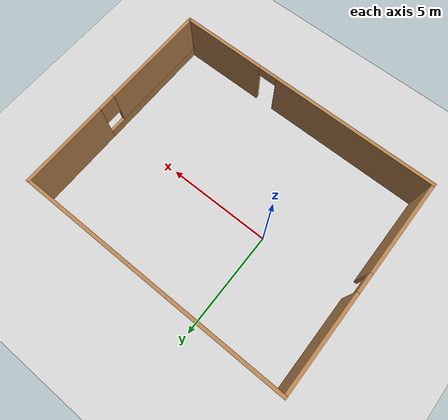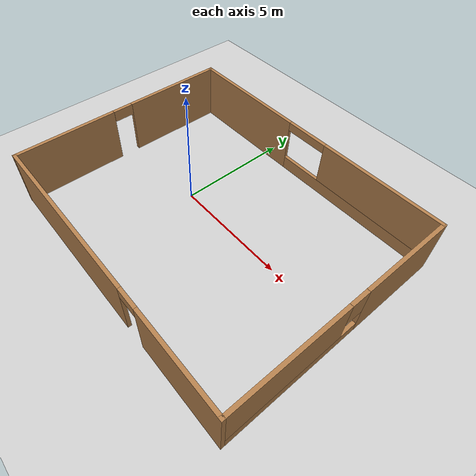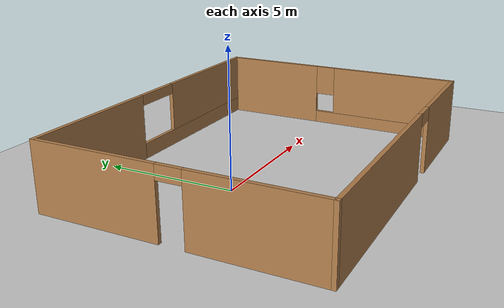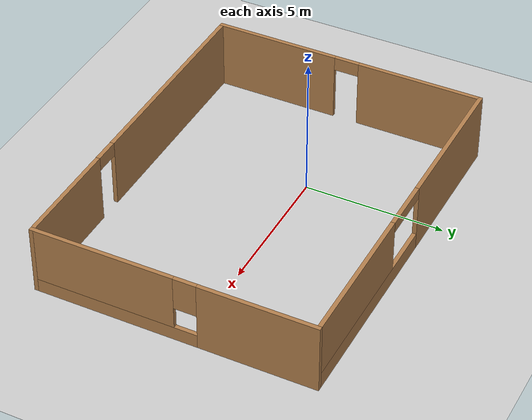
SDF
<sdf version="1.7">
 <world name="default">
  <light name="sun" type="directional">
   <pose>0 0 10 0 -0 0</pose>
   <diffuse>0.8 0.8 0.8 1</diffuse>
   <specular>0.2 0.2 0.2 1</specular>
   <attenuation>
    <range>1000</range>
    <constant>0.9</constant>
    <linear>0.01</linear>
    <quadratic>0.001</quadratic>
   </attenuation>
   <direction>-0.5 0.1 -0.9</direction>
   <spot><inner_angle>0</inner_angle><outer_angle>0</outer_angle><falloff>0</falloff></spot>
  </light>
  <model name="ground_plane">
   <static>1</static>
   <link name="link">
    <collision name="collision">
     <geometry><plane><normal>0 0 1</normal><size>100 100</size></plane></geometry>
     <surface>
      <contact><collide_bitmask>65535</collide_bitmask></contact>
      <friction><ode><mu>100</mu><mu2>50</mu2></ode></friction>
     </surface>
    </collision>
    <visual name="visual">
     <cast_shadows>0</cast_shadows>
     <geometry><plane><normal>0 0 1</normal><size>100 100</size></plane></geometry>
     <material>
      <script><uri>file://media/materials/scripts/gazebo.material</uri><name>Gazebo/Grey</name></script>
     </material>
    </visual>
   </link>
  </model>
  <gravity>0 0 -9.8</gravity>
  <magnetic_field>6e-06 2.3e-05 -4.2e-05</magnetic_field>
  <atmosphere type="adiabatic"/>
  <physics type="ode">
   <max_step_size>0.001</max_step_size>
   <real_time_factor>1</real_time_factor>
   <real_time_update_rate>1000</real_time_update_rate>
  </physics>
  <scene><ambient>0.4 0.4 0.4 1</ambient><background>0.7 0.7 0.7 1</background><shadows>1</shadows></scene>
  <audio><device>default</device></audio>
  <spherical_coordinates>
   <surface_model>EARTH_WGS84</surface_model>
   <latitude_deg>0</latitude_deg>
   <longitude_deg>0</longitude_deg>
   <elevation>0</elevation>
   <heading_deg>0</heading_deg>
  </spherical_coordinates>
  <model name="my_world">
   <pose>2.1445 -0.454262 0 0 -0 0</pose>
   <link name="Wall_0">
    <pose>-6.3 0 0 0 -0 1.5708</pose>
    <visual name="Wall_0_Visual_0">
     <pose>-2.7338 0 1.25 0 -0 0</pose>
     <geometry><box><size>4.53239 0.15 2.5</size></box></geometry>
     <material>
      <script><uri>file://media/materials/scripts/gazebo.material</uri><name>Gazebo/Wood</name></script>
      <ambient>1 1 1 1</ambient>
     </material>
     <meta><layer>0</layer></meta>
    </visual>
    <collision name="Wall_0_Collision_0">
     <geometry><box><size>4.53239 0.15 2.5</size></box></geometry>
     <pose>-2.7338 0 1.25 0 -0 0</pose>
    </collision>
    <visual name="Wall_0_Visual_1">
     <pose>2.71619 0 1.25 0 -0 0</pose>
     <geometry><box><size>4.56761 0.15 2.5</size></box></geometry>
     <material>
      <script><uri>file://media/materials/scripts/gazebo.material</uri><name>Gazebo/Wood</name></script>
      <ambient>1 1 1 1</ambient>
     </material>
     <meta><layer>0</layer></meta>
    </visual>
    <collision name="Wall_0_Collision_1">
     <geometry><box><size>4.56761 0.15 2.5</size></box></geometry>
     <pose>2.71619 0 1.25 0 -0 0</pose>
    </collision>
    <visual name="Wall_0_Visual_2">
     <pose>-0.01761 0 2.25 0 -0 0</pose>
     <geometry><box><size>0.9 0.15 0.5</size></box></geometry>
     <material>
      <script><uri>file://media/materials/scripts/gazebo.material</uri><name>Gazebo/Wood</name></script>
      <ambient>1 1 1 1</ambient>
     </material>
     <meta><layer>0</layer></meta>
    </visual>
    <collision name="Wall_0_Collision_2">
     <geometry><box><size>0.9 0.15 0.5</size></box></geometry>
     <pose>-0.01761 0 2.25 0 -0 0</pose>
    </collision>
   </link>
   <link name="Wall_1">
    <pose>0 4.925 0 0 -0 0</pose>
    <visual name="Wall_1_Visual_0">
     <pose>-3.65009 0 1.25 0 -0 0</pose>
     <geometry><box><size>5.44982 0.15 2.5</size></box></geometry>
     <material>
      <script><uri>file://media/materials/scripts/gazebo.material</uri><name>Gazebo/Wood</name></script>
      <ambient>1 1 1 1</ambient>
     </material>
     <meta><layer>0</layer></meta>
    </visual>
    <collision name="Wall_1_Collision_0">
     <geometry><box><size>5.44982 0.15 2.5</size></box></geometry>
     <pose>-3.65009 0 1.25 0 -0 0</pose>
    </collision>
    <visual name="Wall_1_Visual_1">
     <pose>2.72491 0 0.3 0 -0 0</pose>
     <geometry><box><size>7.30018 0.15 0.6</size></box></geometry>
     <material>
      <script><uri>file://media/materials/scripts/gazebo.material</uri><name>Gazebo/Wood</name></script>
      <ambient>1 1 1 1</ambient>
     </material>
     <meta><layer>0</layer></meta>
    </visual>
    <collision name="Wall_1_Collision_1">
     <geometry><box><size>7.30018 0.15 0.6</size></box></geometry>
     <pose>2.72491 0 0.3 0 -0 0</pose>
    </collision>
    <visual name="Wall_1_Visual_2">
     <pose>3.67241 0 1.55 0 -0 0</pose>
     <geometry><box><size>5.40518 0.15 1.9</size></box></geometry>
     <material>
      <script><uri>file://media/materials/scripts/gazebo.material</uri><name>Gazebo/Wood</name></script>
      <ambient>1 1 1 1</ambient>
     </material>
     <meta><layer>0</layer></meta>
    </visual>
    <collision name="Wall_1_Collision_2">
     <geometry><box><size>5.40518 0.15 1.9</size></box></geometry>
     <pose>3.67241 0 1.55 0 -0 0</pose>
    </collision>
    <visual name="Wall_1_Visual_3">
     <pose>0.022323 0 2.3 0 -0 0</pose>
     <geometry><box><size>1.895 0.15 0.4</size></box></geometry>
     <material>
      <script><uri>file://media/materials/scripts/gazebo.material</uri><name>Gazebo/Wood</name></script>
      <ambient>1 1 1 1</ambient>
     </material>
     <meta><layer>0</layer></meta>
    </visual>
    <collision name="Wall_1_Collision_3">
     <geometry><box><size>1.895 0.15 0.4</size></box></geometry>
     <pose>0.022323 0 2.3 0 -0 0</pose>
    </collision>
   </link>
   <link name="Wall_2">
    <pose>6.3 0 0 0 -0 -1.5708</pose>
    <visual name="Wall_2_Visual_0">
     <pose>-2.93745 0 1.25 0 -0 0</pose>
     <geometry><box><size>4.12511 0.15 2.5</size></box></geometry>
     <material>
      <script><uri>file://media/materials/scripts/gazebo.material</uri><name>Gazebo/Wood</name></script>
      <ambient>1 1 1 1</ambient>
     </material>
     <meta><layer>0</layer></meta>
    </visual>
    <collision name="Wall_2_Collision_0">
     <geometry><box><size>4.12511 0.15 2.5</size></box></geometry>
     <pose>-2.93745 0 1.25 0 -0 0</pose>
    </collision>
    <visual name="Wall_2_Visual_1">
     <pose>2.06255 0 0.25 0 -0 0</pose>
     <geometry><box><size>5.87489 0.15 0.5</size></box></geometry>
     <material>
      <script><uri>file://media/materials/scripts/gazebo.material</uri><name>Gazebo/Wood</name></script>
      <ambient>1 1 1 1</ambient>
     </material>
     <meta><layer>0</layer></meta>
    </visual>
    <collision name="Wall_2_Collision_1">
     <geometry><box><size>5.87489 0.15 0.5</size></box></geometry>
     <pose>2.06255 0 0.25 0 -0 0</pose>
    </collision>
    <visual name="Wall_2_Visual_2">
     <pose>2.46255 0 1.5 0 -0 0</pose>
     <geometry><box><size>5.07489 0.15 2</size></box></geometry>
     <material>
      <script><uri>file://media/materials/scripts/gazebo.material</uri><name>Gazebo/Wood</name></script>
      <ambient>1 1 1 1</ambient>
     </material>
     <meta><layer>0</layer></meta>
    </visual>
    <collision name="Wall_2_Collision_2">
     <geometry><box><size>5.07489 0.15 2</size></box></geometry>
     <pose>2.46255 0 1.5 0 -0 0</pose>
    </collision>
    <visual name="Wall_2_Visual_3">
     <pose>-0.474893 0 1.9 0 -0 0</pose>
     <geometry><box><size>0.8 0.15 1.2</size></box></geometry>
     <material>
      <script><uri>file://media/materials/scripts/gazebo.material</uri><name>Gazebo/Wood</name></script>
      <ambient>1 1 1 1</ambient>
     </material>
     <meta><layer>0</layer></meta>
    </visual>
    <collision name="Wall_2_Collision_3">
     <geometry><box><size>0.8 0.15 1.2</size></box></geometry>
     <pose>-0.474893 0 1.9 0 -0 0</pose>
    </collision>
   </link>
   <link name="Wall_3">
    <pose>0 -4.925 0 0 -0 3.14159</pose>
    <visual name="Wall_3_Visual_0">
     <pose>-4.35021 0 1.25 0 -0 0</pose>
     <geometry><box><size>4.04957 0.15 2.5</size></box></geometry>
     <material>
      <script><uri>file://media/materials/scripts/gazebo.material</uri><name>Gazebo/Wood</name></script>
      <ambient>1 1 1 1</ambient>
     </material>
     <meta><layer>0</layer></meta>
    </visual>
    <collision name="Wall_3_Collision_0">
     <geometry><box><size>4.04957 0.15 2.5</size></box></geometry>
     <pose>-4.35021 0 1.25 0 -0 0</pose>
    </collision>
    <visual name="Wall_3_Visual_1">
     <pose>2.47479 0 1.25 0 -0 0</pose>
     <geometry><box><size>7.80042 0.15 2.5</size></box></geometry>
     <material>
      <script><uri>file://media/materials/scripts/gazebo.material</uri><name>Gazebo/Wood</name></script>
      <ambient>1 1 1 1</ambient>
     </material>
     <meta><layer>0</layer></meta>
    </visual>
    <collision name="Wall_3_Collision_1">
     <geometry><box><size>7.80042 0.15 2.5</size></box></geometry>
     <pose>2.47479 0 1.25 0 -0 0</pose>
    </collision>
    <visual name="Wall_3_Visual_2">
     <pose>-1.87542 0 2.25 0 -0 0</pose>
     <geometry><box><size>0.9 0.15 0.5</size></box></geometry>
     <material>
      <script><uri>file://media/materials/scripts/gazebo.material</uri><name>Gazebo/Wood</name></script>
      <ambient>1 1 1 1</ambient>
     </material>
     <meta><layer>0</layer></meta>
    </visual>
    <collision name="Wall_3_Collision_2">
     <geometry><box><size>0.9 0.15 0.5</size></box></geometry>
     <pose>-1.87542 0 2.25 0 -0 0</pose>
    </collision>
   </link>
   <static>1</static>
  </model>
 </world>
</sdf>
